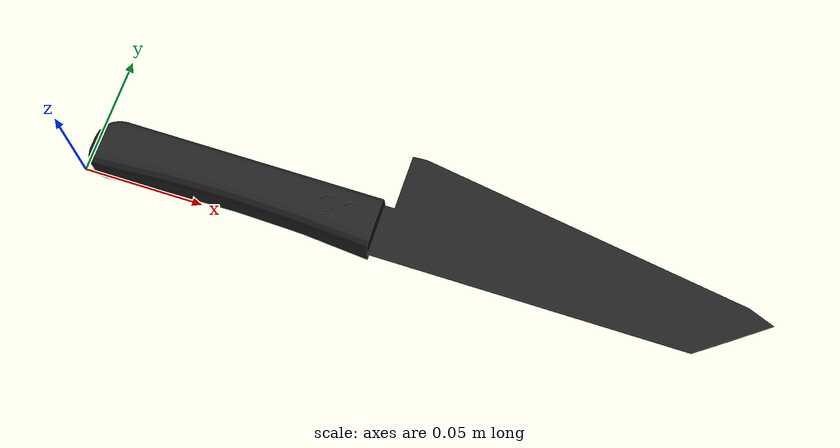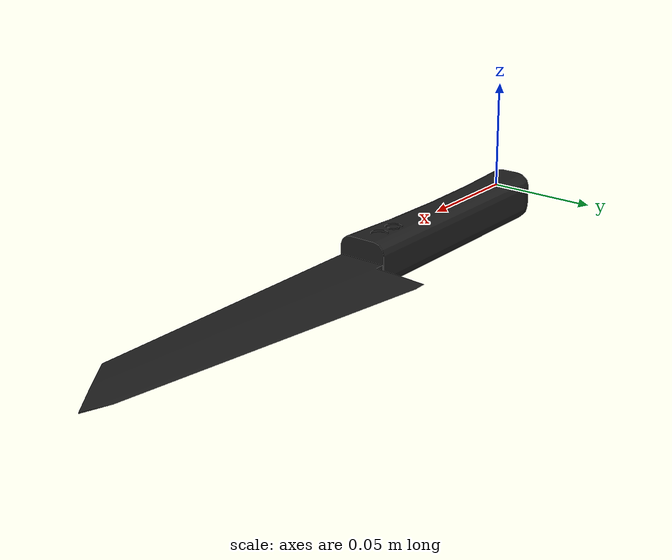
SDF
<?xml version='1.0'?>
<sdf version="1.5">
  <model name="knife"> <!-- Very important to change-->
    <static>false</static>
    <pose>0 0 0 0 0 0</pose> <!-- Translation: X Y Z and Rotation: Roll Pitch Yaw (In Radian)-->
    <link name="body">

      <inertial>
        <mass>0.421</mass>
          <inertia>
          <ixx>1</ixx>
          <ixy>0</ixy>
          <ixz>0</ixz>
          <iyy>1</iyy>
          <iyz>0</iyz>
          <izz>1</izz>
        </inertia>
      </inertial>

       <collision name="collision"> <!-- You can use mesh like below -->
        <geometry>
          <mesh>
             <uri>/home/sorox23/robotic_ws/master_thesis_ws/src/property_based_tester/environment/models/knife/meshes/knife.stl</uri>
            <scale>0.001 0.001 0.001</scale>
          </mesh>
        </geometry>
      </collision>

      <visual name="visual">
        <geometry>
          <mesh>
             <uri>/home/sorox23/robotic_ws/master_thesis_ws/src/property_based_tester/environment/models/knife/meshes/knife.stl</uri>
            <scale>0.001 0.001 0.001</scale>
          </mesh>
        </geometry>

        <material>
          <script>
             <uri>/home/sorox23/robotic_ws/master_thesis_ws/src/property_based_tester/environment/models/knife/materials/scripts</uri>
             <uri>/home/sorox23/robotic_ws/master_thesis_ws/src/property_based_tester/environment/models/knife/materials/textures</uri>
             <name>Gazebo/FlatBlack</name>
          </script>
        </material>
      </visual>
    </link>
  </model>
</sdf>
